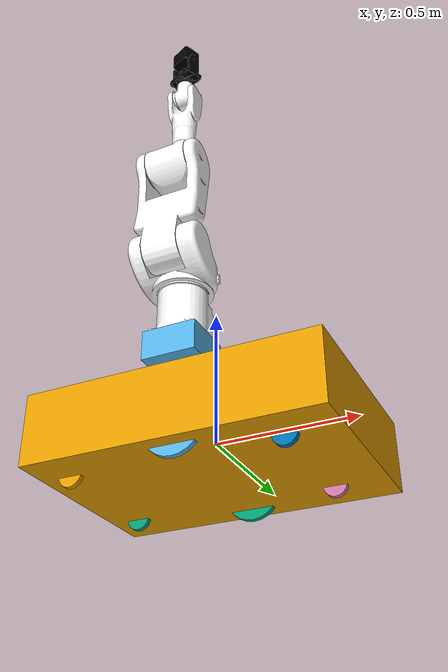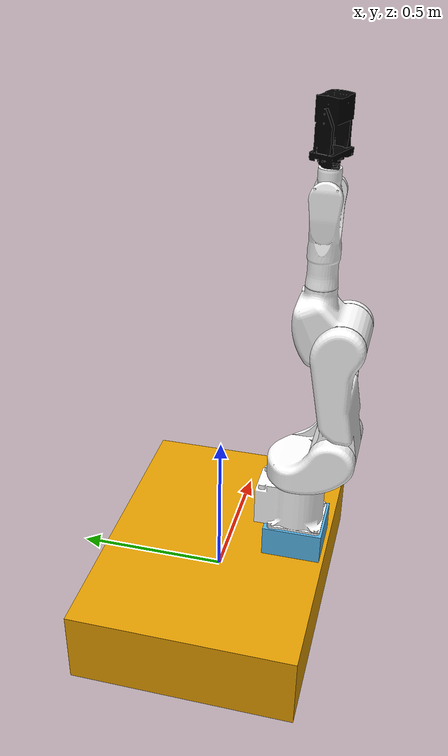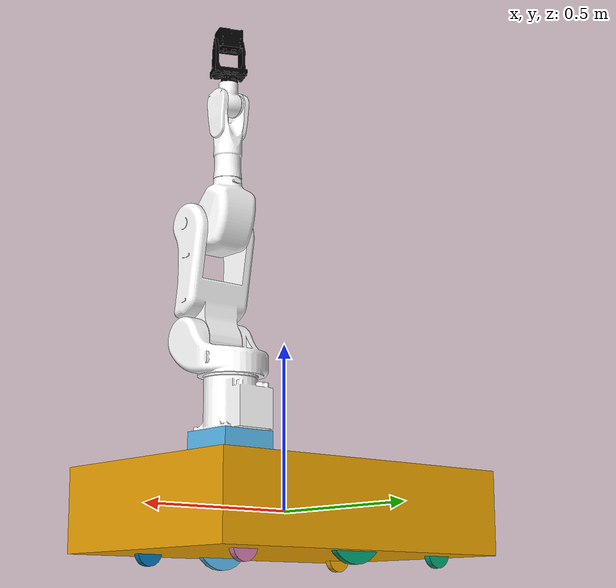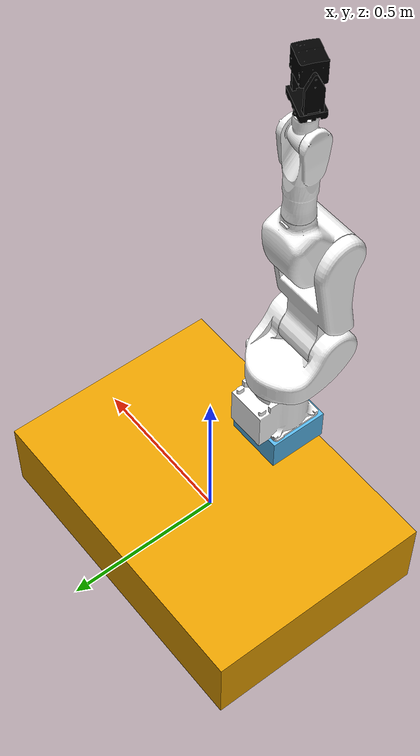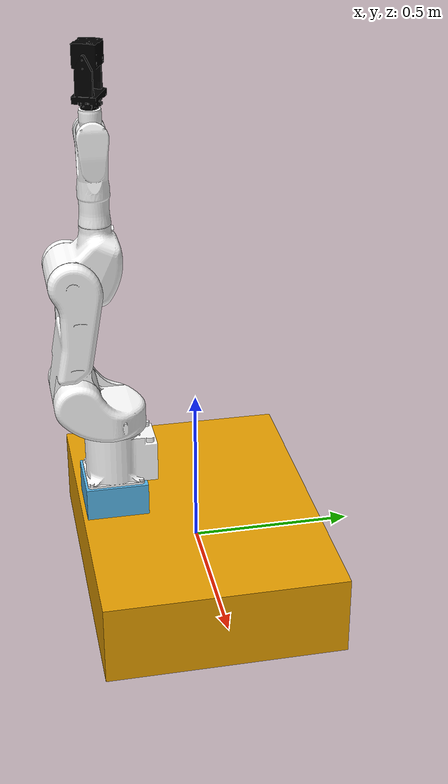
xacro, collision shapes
<?xml version="1.0" ?>
<robot name="robot" xmlns:xacro="http://ros.org/wiki/xacro">

<xacro:include filename="$(find mobile_manipulator_description)/urdf/khi_rs/rs005l_macro.xacro"/>

  <!--xacro:include filename="$(find realsense_gazebo_plugin)/urdf/khi_rs/d435_simulation.xacro"/-->
<xacro:include filename="$(find mobile_manipulator_description)/urdf/ota/ota_base.xacro"/>
<xacro:include filename="$(find mobile_manipulator_description)/urdf/ota/inertia_tensors.urdf.xacro"/>
<xacro:include filename="$(find mobile_manipulator_description)/urdf/ota/ota_wheel.xacro"/>
<xacro:include filename="$(find mobile_manipulator_description)/urdf/ota/ota_plugin.xacro"/>
<xacro:include filename="$(find mobile_manipulator_description)/urdf/ota/ota_caster.xacro"/>
<xacro:include filename="$(find mobile_manipulator_description)/urdf/ota/ota_ir.xacro"/>

  <!-- instantiate rs005l -->
  <xacro:khi_rs005l prefix=""/>

  <xacro:ota_base link_name="ota_base_link"/>
  <xacro:ota_ir base_link="ota_base_link" link_name="ota_ir" xyz_ir="0.503 0.0 0.03" rpy_ir="0 0 0"/>
  <xacro:ota_wheel base_link="ota_base_link" xyz_hub="0 -0.30 -0.06" rpy_hub="0 0 0" side="left"/>
  <xacro:ota_wheel base_link="ota_base_link" xyz_hub="0 0.30 -0.06" rpy_hub="0 0 0" side="right"/>
  <xacro:ota_swivel base_link="ota_base_link" xyz_caster="0.37 -0.22 -0.048" rpy_caster="0 0 0" side="front_right"/>
  <xacro:ota_swivel base_link="ota_base_link" xyz_caster="0.37 0.22 -0.048" rpy_caster="0 0 0" side="front_left"/>
  <xacro:ota_swivel base_link="ota_base_link" xyz_caster="-0.37 -0.22 -0.048" rpy_caster="0 0 0" side="back_right"/>
  <xacro:ota_swivel base_link="ota_base_link" xyz_caster="-0.37 0.22 -0.048" rpy_caster="0 0 0" side="back_left"/>

  <!-- Motor plugin -->
  <xacro:ota_diff_drive base_link="ota_base_link"/>

  <!-- Joints plugin -->
  <xacro:ota_joints_state_publisher />
  <!-- Fix rs005l to ota -->

  <joint name="world2base" type="fixed">
    <parent link="manipulator_base_link"/>
    <child link="base_link"/>
    <origin rpy="0 0 3.141593" xyz="0 -0.0 0.051"/>
  </joint>

</robot>

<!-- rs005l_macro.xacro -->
<robot xmlns:xacro="http://ros.org/wiki/xacro">
  <xacro:macro name="khi_rs005l" params="prefix">

    <xacro:include filename="$(find mobile_manipulator_description)/urdf/khi_rs/rs.transmission.xacro" />
    <xacro:include filename="$(find mobile_manipulator_description)/urdf/khi_rs/common.gazebo.xacro" />

    <!-- link rviz colors -->
    <material name="White">
      <color rgba="1 1 1 1"/>
    </material>

    <material name="Black">
      <color rgba="0 0 0 1"/>
    </material>

    <!-- DH parameters -->
    <xacro:property name="dh_j1_j2_roty" value="${radians(90)}"/>
    <xacro:property name="dh_j3_j4_roty" value="${radians(90)}"/>
    <xacro:property name="dh_j4_j5_roty" value="${radians(90)}"/>
    <xacro:property name="dh_j5_j6_roty" value="${radians(90)}"/>

    <!-- link mass [kg] -->
    <xacro:property name="j0_mass" value="5.910"/>
    <xacro:property name="j1_mass" value="10.395"/>
    <xacro:property name="j2_mass" value="8.788"/>
    <xacro:property name="j3_mass" value="7.575"/>
    <xacro:property name="j4_mass" value="2.679"/>
    <xacro:property name="j5_mass" value="1.028"/>
    <xacro:property name="j6_mass" value="0.625"/>

    <!-- link lengths [m] -->
    <xacro:property name="j0_length" value="0.295"/>
    <xacro:property name="j1_length" value="0.105"/>
    <xacro:property name="j2_length" value="0.380"/>
    <xacro:property name="j31_length" value="0.15"/>
    <xacro:property name="j32_length" value="0.080"/>
    <xacro:property name="j4_length" value="0.410"/>
    <xacro:property name="j5_length" value="0.078"/>

    <!-- joint limits [rad] -->
    <xacro:property name="j1_lower_limit" value="${radians(-180)}"/>
    <xacro:property name="j1_upper_limit" value="${radians( 180)}"/>
    <xacro:property name="j2_lower_limit" value="${radians( -80)}"/>
    <xacro:property name="j2_upper_limit" value="${radians( 135)}"/>
    <xacro:property name="j3_lower_limit" value="${radians(-172)}"/>
    <xacro:property name="j3_upper_limit" value="${radians( 118)}"/>
    <xacro:property name="j4_lower_limit" value="${radians(-360)}"/>
    <xacro:property name="j4_upper_limit" value="${radians( 360)}"/>
    <xacro:property name="j5_lower_limit" value="${radians(-145)}"/>
    <xacro:property name="j5_upper_limit" value="${radians( 145)}"/>
    <xacro:property name="j6_lower_limit" value="${radians(-360)}"/>
    <xacro:property name="j6_upper_limit" value="${radians( 360)}"/>

    <!-- joint verocity limits [rad/s] -->
    <xacro:property name="j1_velocity_limit" value="${radians( 300)}"/>
    <xacro:property name="j2_velocity_limit" value="${radians( 300)}"/>
    <xacro:property name="j3_velocity_limit" value="${radians( 300)}"/>
    <xacro:property name="j4_velocity_limit" value="${radians( 460)}"/>
    <xacro:property name="j5_velocity_limit" value="${radians( 460)}"/>
    <xacro:property name="j6_velocity_limit" value="${radians( 740)}"/>

    <!-- link inertial(TODO : set correct link inertial )-->
    <xacro:macro name="default_inertial" params="mass">
      <inertial>
        <mass value="${mass}" />
        <inertia ixx="1.0" ixy="0.0" ixz="0.0" iyy="1.0" iyz="0.0" izz="1.0" />
      </inertial>
    </xacro:macro>

    <!-- rs007l start -->

    <!-- Link 0 -->
    <link name="${prefix}base_link">
      <visual>
        <geometry>
          <mesh filename="package://mobile_manipulator_description/meshes/khi_rs/RS005L_J0.STL"/>
        </geometry>
        <material name="White"/>
        <origin rpy="0 0 0" xyz="0 0 0"/>
      </visual>
      <collision>
        <geometry>
          <mesh filename="package://mobile_manipulator_description/meshes/khi_rs/RS005L_J0.STL"/>
        </geometry>
        <material name="White"/>
        <origin rpy="0 0 0" xyz="0 0 0"/>
      </collision>
      <xacro:default_inertial mass="${j0_mass}"/>
    </link>

    <!-- Link 1 -->
    <joint name="${prefix}joint1" type="revolute">
      <axis xyz="0 0 -1" rpy="0 0 0" />
      <limit effort="1000.0" lower="${j1_lower_limit}" upper="${j1_upper_limit}" velocity="${j1_velocity_limit}"/>
      <origin xyz="0 0 ${j0_length}" rpy="0 0 0" />
      <parent link="${prefix}base_link"/>
      <child link="${prefix}link1"/>
      <dynamics damping="0.0" friction="0.0"/>
    </joint>

    <link name="${prefix}link1">
      <visual>
        <geometry>
          <mesh filename="package://mobile_manipulator_description/meshes/khi_rs/RS005L_J1.STL"/>
        </geometry>
        <material name="White"/>
        <origin rpy="0 0 0" xyz="0 0 0"/>
      </visual>
      <collision>
        <geometry>
          <mesh filename="package://mobile_manipulator_description/meshes/khi_rs/RS005L_J1.STL"/>
        </geometry>
        <material name="White"/>
        <origin rpy="0 0 0" xyz="0 0 0"/>
      </collision>
      <xacro:default_inertial mass="${j1_mass}"/>
    </link>

    <!-- Link 2 -->
    <joint name="${prefix}joint2" type="revolute">
      <axis xyz="0 0 1" rpy="0 0 0" />
      <limit effort="1000.0" lower="${j2_lower_limit}" upper="${j2_upper_limit}" velocity="${j2_velocity_limit}"/>
      <origin xyz="0 ${j1_length} 0" rpy="0 ${dh_j1_j2_roty*-1} 0" />
      <parent link="${prefix}link1"/>
      <child link="${prefix}link2"/>
      <dynamics damping="0.0" friction="0.0"/>
    </joint>

    <link name="${prefix}link2">
      <visual>
        <geometry>
          <mesh filename="package://mobile_manipulator_description/meshes/khi_rs/RS005L_J2.STL"/>
        </geometry>
        <material name="White"/>
        <origin xyz="0 0 0" rpy="0 0 0"/>
      </visual>
      <collision>
        <geometry>
          <mesh filename="package://mobile_manipulator_description/meshes/khi_rs/RS005L_J2.STL"/>
        </geometry>
        <material name="White"/>
        <origin xyz="0 0 0" rpy="0 0 0"/>
      </collision>
      <xacro:default_inertial mass="0${j2_mass}"/>
    </link>

    <!-- Link 3 -->
    <joint name="${prefix}joint3" type="revolute">
      <axis xyz="0 0 -1" rpy="0 0 0" />
      <limit effort="1000.0" lower="${j3_lower_limit}" upper="${j3_upper_limit}" velocity="${j3_velocity_limit}"/>
      <origin xyz="${j2_length} 0 0" rpy="0 0 0" />
      <parent link="${prefix}link2"/>
      <child link="${prefix}link3"/>
      <dynamics damping="0.0" friction="0.0"/>
    </joint>

    <link name="${prefix}link3">
      <visual>
        <geometry>
          <mesh filename="package://mobile_manipulator_description/meshes/khi_rs/RS005L_J3.STL"/>
        </geometry>
        <material name="White"/>
        <origin xyz="0 0 0" rpy="0 0 0"/>
      </visual>
      <collision>
        <geometry>
          <mesh filename="package://mobile_manipulator_description/meshes/khi_rs/RS005L_J3.STL"/>
        </geometry>
        <material name="White"/>
        <origin xyz="0 0 0" rpy="0 0 0"/>
      </collision>
      <xacro:default_inertial mass="${j3_mass}"/>
    </link>

    <!-- Link 4 -->
    <joint name="${prefix}joint4" type="revolute">
      <axis xyz="0 0 1" rpy="0 0 0" />
      <limit effort="1000.0" lower="${j4_lower_limit}" upper="${j4_upper_limit}" velocity="${j4_velocity_limit}"/>
      <origin xyz="${j31_length} ${j32_length*-1} 0" rpy="0 ${dh_j3_j4_roty} 0" />
      <parent link="${prefix}link3"/>
      <child link="${prefix}link4"/>
      <dynamics damping="0.0" friction="0.0"/>
    </joint>

    <link name="${prefix}link4">
      <visual>
        <geometry>
          <mesh filename="package://mobile_manipulator_description/meshes/khi_rs/RS005L_J4.STL"/>
        </geometry>
        <material name="White"/>
        <origin xyz="0 0 0" rpy="0 0 0"/>
      </visual>
      <collision>
        <geometry>
          <mesh filename="package://mobile_manipulator_description/meshes/khi_rs/RS005L_J4.STL"/>
        </geometry>
        <material name="White"/>
        <origin xyz="0 0 0" rpy="0 0 0"/>
      </collision>
      <xacro:default_inertial mass="${j4_mass}"/>
    </link>

    <!-- Link 5 -->
    <joint name="${prefix}joint5" type="revolute">
      <axis xyz="0 0 -1" rpy="0 0 0" />
      <limit effort="1000.0" lower="${j5_lower_limit}" upper="${j5_upper_limit}" velocity="${j5_velocity_limit}"/>
      <origin xyz="0 0 0.26" rpy="0 ${dh_j4_j5_roty*-1} 0" />
      <parent link="${prefix}link4"/>
      <child link="${prefix}link5"/>
      <dynamics damping="0.0" friction="0.0"/>
    </joint>

    <link name="${prefix}link5">
      <visual>
        <geometry>
          <mesh filename="package://mobile_manipulator_description/meshes/khi_rs/RS005L_J5.STL"/>
        </geometry>
        <material name="White"/>
        <origin xyz="0 0 0" rpy="0 0 0"/>
      </visual>
      <collision>
        <geometry>
          <mesh filename="package://mobile_manipulator_description/meshes/khi_rs/RS005L_J5.STL"/>
        </geometry>
        <material name="White"/>
        <origin xyz="0 0 0" rpy="0 0 0"/>
      </collision>
      <xacro:default_inertial mass="${j5_mass}"/>
    </link>

    <!-- Link 6 -->
    <joint name="${prefix}joint6" type="revolute">
      <axis xyz="0 0 1" rpy="0 0 0" />
      <limit effort="1000.0" lower="${j6_lower_limit}" upper="${j6_upper_limit}" velocity="${j6_velocity_limit}"/>
      <origin xyz="${j5_length} 0 0" rpy="0 ${dh_j5_j6_roty} 0" />
      <parent link="${prefix}link5"/>
      <child link="${prefix}link6"/>
      <dynamics damping="0.0" friction="0.0"/>
    </joint>

    <link name="${prefix}link6">
      <visual>
        <geometry>
          <mesh filename="package://mobile_manipulator_description/meshes/khi_rs/RS005L_J6.STL"/>
        </geometry>
        <material name="Black"/>
        <origin xyz="0 0 0" rpy="0 0 0"/>
      </visual>
      <collision>
        <geometry>
          <mesh filename="package://mobile_manipulator_description/meshes/khi_rs/RS005L_J6.STL"/>
        </geometry>
        <material name="Black"/>
        <origin xyz="0 0 0" rpy="0 0 0"/>
      </collision>
      <xacro:default_inertial mass="${j6_mass}"/>
    </link>

    <!-- Link 7 -->
    <joint name="${prefix}joint7" type="fixed">
      <axis xyz="0 0 1" rpy="0 0 0" />
      <origin xyz="0 0 0" rpy="0 0 -1.96" />
      <parent link="${prefix}link6"/>
      <child link="${prefix}link7"/>
    </joint>

        <link name="${prefix}link7">
      <visual>
        <geometry>
          <mesh filename="package://mobile_manipulator_description/meshes/khi_rs/Montaj.stl" scale="0.001 0.001 0.001"/>
        </geometry>
        <material name="Black"/>
        <origin xyz="-0.035 -0.04 0.2175" rpy="1.570796 3.1415 0"/>
      </visual>
      <collision>
        <geometry>
          <mesh filename="package://mobile_manipulator_description/meshes/khi_rs/Montaj.stl" scale="0.001 0.001 0.001"/>
        </geometry>
        <material name="Black"/>
        <origin xyz="-0.035 -0.04 0.2175" rpy="1.570796 3.1415 0"/>
      </collision>
      <xacro:default_inertial mass="0.1"/>
    </link>
  </xacro:macro>
</robot>

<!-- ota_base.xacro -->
<robot xmlns:xacro="http://ros.org/wiki/xacro">
  <xacro:macro name="ota_base" params="link_name">

    <link name='${link_name}'>
      <origin xyz="0 0 0" rpy=" 0 0 0"/>

      <visual>
        <origin xyz="0 0 -0.1625" rpy=" 0 0 0"/>
        <geometry>
        <mesh filename="package://mobile_manipulator_description/meshes/ota/OTA-v0.7.stl" scale="0.001 0.001 0.001"/>
        </geometry>
      </visual>

      <collision>
        <origin xyz="0 0 -0.0" rpy=" 0 0 0"/>
        <geometry>
          <box size="1.02605 0.728 0.25"/>
        </geometry>
      </collision>

      <xacro:box_inertial x="1.02605" y="0.728"  z="0.3" mass="50.0" />
    </link>

    <gazebo reference="${link_name}">
      <material value="Gazebo/Orange"/>
    </gazebo>

    <link name='manipulator_base_link'>
      <origin xyz="0 0 0" rpy=" 0 0 0"/>

      <visual>
        <origin xyz="0 0 -0.0" rpy=" 0 0 0"/>
        <geometry>
          <box size="0.187945 0.190701 0.103"/>
        </geometry>
      </visual>

      <collision>
        <origin xyz="0 0 -0.0" rpy=" 0 0 0"/>
        <geometry>
          <box size="0.187945 0.190701 0.103"/>
        </geometry>
      </collision>

      <xacro:box_inertial x="0.187945" y="0.190701"  z="0.103" mass="5.0" />
    </link>

    <gazebo reference="manipulator_base_link">
      <material value="Gazebo/Orange"/>
    </gazebo>

  <joint name="base2manipulatorbase" type="fixed">
    <parent link="${link_name}"/>
    <child link="manipulator_base_link"/>
    <origin rpy="0 0 0" xyz="0.001 -0.26 0.212"/>
  </joint>

	    <link name="camera1_link">
		    <visual>
			<origin xyz="-0.03 0 0" rpy="1.57 0 1.57"/>
			<geometry>
			    <mesh filename="package://mobile_manipulator_description/meshes/camera.stl" scale="0.001 0.001 0.001"/>
			</geometry>
		    </visual>
	    </link>

	    <joint name="camera1_joint" type="fixed">
			<origin xyz="0.1 -0.1 0.05" rpy="0 0 -0.785398163"/>
			<parent link="manipulator_base_link"/>
			<child link="camera1_link"/>
	    </joint>

	    <joint name="camera1_rgb_joint" type="fixed">
			<origin xyz="0 0 0" rpy="-1.570796 0 -1.570796"/>
			<parent link="camera1_link"/>
			<child link="camera1_rgb_frame"/>
	    </joint>

	    <link name="camera1_rgb_frame"/>

	    <joint name="camera1_rgb_optic_joint" type="fixed">
			<origin xyz="0 0 0" rpy="0 0 0"/>
			<parent link="camera1_rgb_frame"/>
			<child link="camera1_rgb_optic_frame"/>
	    </joint>

   	 <link name="camera1_rgb_optic_frame"/>

	  <gazebo reference="camera1_link">
	    <sensor type="depth" name="Realsense_Camera_Depth">
	      <always_on>true</always_on>
	      <update_rate>10.0</update_rate>
			<camera>
				<horizontal_fov>1.3962634</horizontal_fov>
				<image>
					<width>640</width>
					<height>480</height>
					<format>R8G8B8</format>
				</image>
				<clip>
					<near>0.01</near>
					<far>5</far>
				</clip>
			</camera>

		<plugin name="depth_camera_plugin" filename="libgazebo_ros_openni_kinect.so">
			  <alwaysOn>true</alwaysOn>
			  <updateRate>10.0</updateRate>
			  <cameraName>camera1</cameraName>
			  <imageTopicName>image_raw</imageTopicName>
			  <cameraInfoTopicName>camera_info</cameraInfoTopicName>
			  <depthImageTopicName>depth_image_raw</depthImageTopicName>
			  <depthImageCameraInfoTopicName>depth_camera_info</depthImageCameraInfoTopicName>
			  <pointCloudTopicName>points</pointCloudTopicName>
			  <frameName>camera1_rgb_optic_frame</frameName>
			  <pointCloudCutoff>0.0</pointCloudCutoff>
			  <distortionK1>0.00000001</distortionK1>
			  <distortionK2>0.00000001</distortionK2>
			  <distortionK3>0.00000001</distortionK3>
			  <distortionT1>0.00000001</distortionT1>
			  <distortionT2>0.00000001</distortionT2>
			  <CxPrime>0</CxPrime>
			  <Cx>0</Cx>
			  <Cy>0</Cy>
			  <focalLength>0</focalLength>
			  <hackBaseline>0</hackBaseline>
		</plugin>
	    </sensor>
	  </gazebo>

	    <link name="camera2_link">
		    <visual>
			<origin xyz="-0.03 0 0" rpy="1.57 0 1.57"/>
			<geometry>
			    <mesh filename="package://mobile_manipulator_description/meshes/camera.stl" scale="0.001 0.001 0.001"/>
			</geometry>
		    </visual>
	    </link>

	    <joint name="camera2_joint" type="fixed">
			<origin xyz="-0.1 -0.1 0.05" rpy="0 0 -2.35619449"/>
			<parent link="manipulator_base_link"/>
			<child link="camera2_link"/>
	    </joint>

	    <joint name="camera2_rgb_joint" type="fixed">
			<origin xyz="0 0 0" rpy="-1.570796 0 -1.570796"/>
			<parent link="camera2_link"/>
			<child link="camera2_rgb_frame"/>
	    </joint>

	    <link name="camera2_rgb_frame"/>

	    <joint name="camera2_rgb_optic_joint" type="fixed">
			<origin xyz="0 0 0" rpy="0 0 0"/>
			<parent link="camera2_rgb_frame"/>
			<child link="camera2_rgb_optic_frame"/>
	    </joint>

   	 <link name="camera2_rgb_optic_frame"/>

	  <gazebo reference="camera2_link">
	    <sensor type="depth" name="Realsense_Camera_Depth">

	      <always_on>true</always_on>
	      <update_rate>10.0</update_rate>
			<camera>
				<horizontal_fov>1.3962634</horizontal_fov>
				<image>
					<width>640</width>
					<height>480</height>
					<format>R8G8B8</format>
				</image>
				<clip>
					<near>0.01</near>
					<far>5</far>
				</clip>
			</camera>

		<plugin name="depth_camera_plugin" filename="libgazebo_ros_openni_kinect.so">
      		  <pose> 0 0 0 1.570796 -0 0</pose>
			  <alwaysOn>true</alwaysOn>
			  <updateRate>10.0</updateRate>
			  <cameraName>camera2</cameraName>
			  <imageTopicName>image_raw</imageTopicName>
			  <cameraInfoTopicName>camera_info</cameraInfoTopicName>
			  <depthImageTopicName>depth_image_raw</depthImageTopicName>
			  <depthImageCameraInfoTopicName>depth_camera_info</depthImageCameraInfoTopicName>
			  <pointCloudTopicName>points</pointCloudTopicName>
			  <frameName>camera2_rgb_optic_frame</frameName>
			  <pointCloudCutoff>0.0</pointCloudCutoff>
			  <distortionK1>0.00000001</distortionK1>
			  <distortionK2>0.00000001</distortionK2>
			  <distortionK3>0.00000001</distortionK3>
			  <distortionT1>0.00000001</distortionT1>
			  <distortionT2>0.00000001</distortionT2>
			  <CxPrime>0</CxPrime>
			  <Cx>0</Cx>
			  <Cy>0</Cy>
			  <focalLength>0</focalLength>
			  <hackBaseline>0</hackBaseline>
		</plugin>
	    </sensor>
	  </gazebo>

  </xacro:macro>
</robot>

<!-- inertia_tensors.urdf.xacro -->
<!-- Thanks to Martin Guenther
  see https://github.com/uos/uos_tools/blob/fuerte/uos_common_urdf/common.xacro and
  see http://answers.gazebosim.org/question/4372/the-inertia-matrix-explained/ -->
<robot xmlns:xacro="http://ros.org/wiki/xacro">
  <property name="M_PI" value="3.1415926535897931" />

  <!-- see https://secure.wikimedia.org/wikipedia/en/wiki/List_of_moment_of_inertia_tensors -->

  <!-- #################### versions without origin #################### -->
  <xacro:macro name="sphere_inertial" params="radius mass">
    <inertial>
      <mass value="${mass}" />
      <origin xyz="0 0 0" />
      <inertia ixx="${0.4 * mass * radius * radius}" ixy="0.0" ixz="0.0"
        iyy="${0.4 * mass * radius * radius}" iyz="0.0"
        izz="${0.4 * mass * radius * radius}" />
    </inertial>
  </xacro:macro>

  <xacro:macro name="cylinder_inertial" params="radius length mass">
    <inertial>
      <mass value="${mass}" />
      <origin xyz="0 0 0" />
      <inertia ixx="${0.0833333 * mass * (3 * radius * radius + length * length)}" ixy="0.0" ixz="0.0"
        iyy="${0.0833333 * mass * (3 * radius * radius + length * length)}" iyz="0.0"
        izz="${0.5 * mass * radius * radius}" />
    </inertial>
  </xacro:macro>

  <xacro:macro name="box_inertial" params="x y z mass">
    <inertial>
      <mass value="${mass}" />
      <origin xyz="0 0 0" />
      <inertia ixx="${0.0833333 * mass * (y*y + z*z)}" ixy="0.0" ixz="0.0"
        iyy="${0.0833333 * mass * (x*x + z*z)}" iyz="0.0"
        izz="${0.0833333 * mass * (x*x + y*y)}" />
    </inertial>
  </xacro:macro>

  <!-- #################### versions with origin #################### -->
  <xacro:macro name="sphere_inertial_with_origin" params="radius mass *origin">
    <inertial>
      <mass value="${mass}" />
      <insert_block name="origin" />
      <inertia ixx="${0.4 * mass * radius * radius}" ixy="0.0" ixz="0.0"
        iyy="${0.4 * mass * radius * radius}" iyz="0.0"
        izz="${0.4 * mass * radius * radius}" />
    </inertial>
  </xacro:macro>

  <xacro:macro name="cylinder_inertial_with_origin" params="radius length mass *origin">
    <inertial>
      <mass value="${mass}" />
      <insert_block name="origin" />
      <inertia ixx="${0.0833333 * mass * (3 * radius * radius + length * length)}" ixy="0.0" ixz="0.0"
        iyy="${0.0833333 * mass * (3 * radius * radius + length * length)}" iyz="0.0"
        izz="${0.5 * mass * radius * radius}" />
    </inertial>
  </xacro:macro>

  <xacro:macro name="box_inertial_with_origin" params="x y z mass *origin">
    <inertial>
      <mass value="${mass}" />
      <insert_block name="origin" />
      <inertia ixx="${0.0833333 * mass * (y*y + z*z)}" ixy="0.0" ixz="0.0"
        iyy="${0.0833333 * mass * (x*x + z*z)}" iyz="0.0"
        izz="${0.0833333 * mass * (x*x + y*y)}" />
    </inertial>
  </xacro:macro>

</robot>

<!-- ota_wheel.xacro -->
<robot xmlns:xacro="http://ros.org/wiki/xacro">
  <xacro:macro name="ota_wheel" params="base_link xyz_hub rpy_hub side">

    <link name='wheel_${side}_link'>
      <visual>
        <origin xyz="0 0 0" rpy=" 0 0 1.570796"/>
        <geometry>
          <mesh filename="package://mobile_manipulator_description/meshes/ota/AnaTeker.stl" scale="0.001 0.001 0.001"/>
        </geometry>
      </visual>

      <collision>
        <origin xyz="0 0 0" rpy="0 1.570796 1.570796"/>
        <geometry>
          <cylinder radius="0.102" length="0.02"/>
        </geometry>
      </collision>

      <xacro:cylinder_inertial radius="0.102" length="0.02" mass="5"/>
    </link>

    <joint name="wheel_${side}_base" type="continuous">
      <origin xyz="${xyz_hub}" rpy="${rpy_hub}"/>
      <parent link="${base_link}"/>
      <child link="wheel_${side}_link"/>
      <axis xyz="0 1 0"/>
    </joint>

    <gazebo reference="wheel_${side}_link">
      <material value="Gazebo/Green"/>
    </gazebo>

  </xacro:macro>
 </robot>

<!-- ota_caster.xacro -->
<robot xmlns:xacro="http://ros.org/wiki/xacro">
  <property name="M_PI" value="3.1415926535897931" />
  <xacro:macro name="ota_swivel" params="base_link xyz_caster rpy_caster side">

    <link name='caster_${side}_link'>
      <visual>
        <origin xyz="0 0 0" rpy=" 0 0 0"/>
        <geometry>
          <mesh filename="package://mobile_manipulator_description/meshes/ota/SarhosTeker.stl" scale="0.001 0.0008 0.001"/>
        </geometry>
      </visual>

      <collision>
        <origin xyz="0 0 0" rpy="0 0 0"/>
        <geometry>
          <cylinder radius="0.005" length="0.05"/>
        </geometry>
      </collision>

      <xacro:cylinder_inertial radius="0.005" length="0.07" mass="1" />
    </link>

    <joint name="caster_${side}_joint" type="fixed">
      <origin xyz="${xyz_caster}" rpy="${rpy_caster}"/>
      <axis xyz="0 0 1"/>
      <parent link="${base_link}"/>
      <child link="caster_${side}_link"/>
    </joint>

    <gazebo reference="caster_${side}_link">
      <material value="Gazebo/Gray"/>
    </gazebo>

    <link name='caster_wheel_${side}_link'>
      <collision>
        <origin xyz="0 0 0" rpy="0 1.570796 1.570796"/>
        <geometry>
          <cylinder radius="0.042" length="0.02"/>
        </geometry>
      </collision>

      <xacro:cylinder_inertial radius="0.042" length="0.02" mass="0.1" />
    </link>

    <joint name="caster_${side}_wheel_joint" type="fixed">
      <axis xyz="0 1 0"/>
      <origin xyz="-0.04 0 -0.07" rpy="0 0 0"/>
      <parent link="caster_${side}_link"/>
      <child link="caster_wheel_${side}_link"/>
    </joint>

  </xacro:macro>
</robot>

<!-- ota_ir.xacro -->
<robot xmlns:xacro="http://ros.org/wiki/xacro">
  <xacro:macro name="ota_ir" params="base_link link_name xyz_ir rpy_ir">

	<link name="${link_name}_link">
		<inertial>
			<origin xyz="0 0 0" rpy="0 0 0"/>
			<mass value="0.001"/>
			<inertia ixx="0.001666" ixy="0" ixz="0" iyy="0.001666" iyz="0" izz="0.001666"/>
		</inertial>

		<visual>
			<origin xyz="0 0 0" rpy="0 0 0"/>
			<geometry>
				<mesh filename="package://mobile_manipulator_description/meshes/ota/FotoelektrikSensor.stl" scale="0.0015 0.0015 0.0015"/>
			</geometry>
		</visual>

		<collision>
			<origin xyz="0 0 0" rpy="0 0 0"/>
			<geometry>
				<box size="0.01 0.01 0.01" />
			</geometry>
		</collision>
	</link>

	<joint name="${link_name}_joint" type="fixed">
		<origin xyz="${xyz_ir}" rpy="${rpy_ir}"/>
		<parent link="${base_link}"/>
		<child link="${link_name}_link"/>
	</joint>

	<gazebo reference="${link_name}_link">
		<sensor type="ray" name="${link_name}">
			<pose>0 0 0 0 0 0</pose>
			<ray>
				<scan>
					<horizontal>
						<samples>320</samples>
						<resolution>1</resolution>
						<min_angle>-0.001</min_angle>
						<max_angle>0.001</max_angle>
					</horizontal>
				</scan>
				<range>
					<min>0.2</min>
					<max>8.0</max>
					<resolution>0.01</resolution>
				</range>
			</ray>

			<plugin name="gazebo_ros_range" filename="libgazebo_ros_range.so">
				<topicName>${link_name}</topicName>
				<frameName>${link_name}_link</frameName>
				<frameId>${link_name}_link</frameId>
				<radiation>ultrasound</radiation>
				<fov>0.7</fov>
				<gaussianNoise>0</gaussianNoise>
			</plugin>

			<always_on>1</always_on>
			<update_rate>4</update_rate>
			<visualize>true</visualize>
		</sensor>
    </gazebo>

  </xacro:macro>
</robot>
